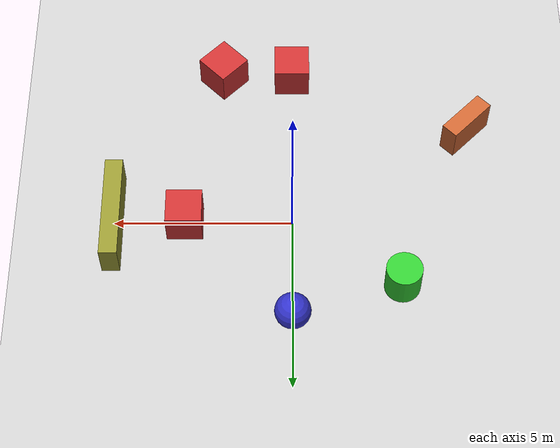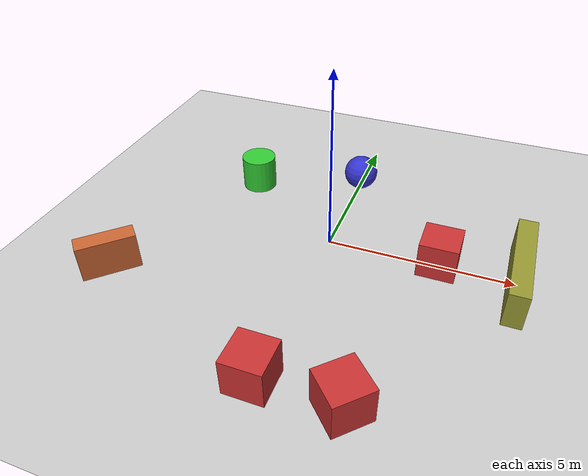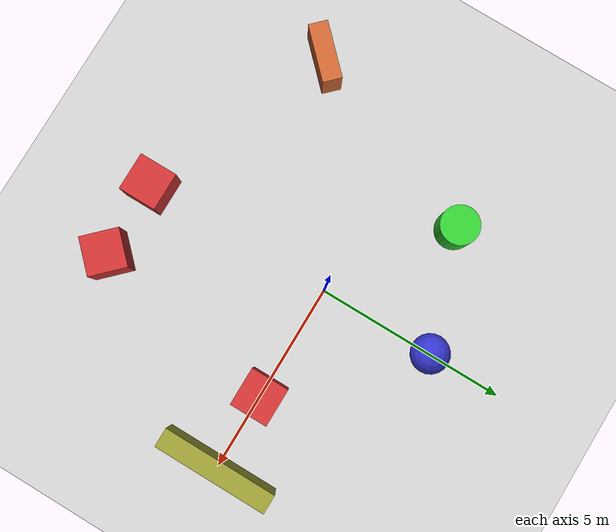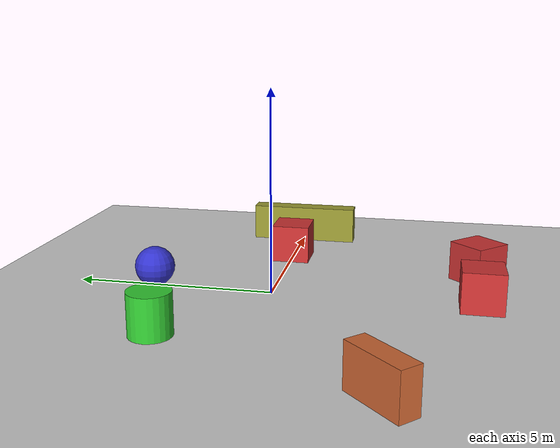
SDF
<?xml version="1.0"?>
<sdf version="1.8">
  <world name="leo_with_obstacles">
    <physics name="1ms" type="ignored">
      <max_step_size>0.001</max_step_size>
      <real_time_factor>1.0</real_time_factor>
    </physics>

    <plugin
      filename="gz-sim-physics-system"
      name="gz::sim::systems::Physics">
    </plugin>
    <plugin
      filename="gz-sim-sensors-system"
      name="gz::sim::systems::Sensors">
    </plugin>
    <plugin
      filename="gz-sim-scene-broadcaster-system"
      name="gz::sim::systems::SceneBroadcaster">
    </plugin>
    <plugin
      filename="gz-sim-user-commands-system"
      name="gz::sim::systems::UserCommands">
    </plugin>
    <plugin filename="gz-sim-imu-system"
      name="gz::sim::systems::Imu">
    </plugin>

    <light name="sun" type="directional">
      <cast_shadows>true</cast_shadows>
      <pose>0 0 10 0 0 0</pose>
      <diffuse>0.8 0.8 0.8 1</diffuse>
      <specular>0.2 0.2 0.2 1</specular>
      <attenuation>
        <range>1000</range>
        <constant>0.9</constant>
        <linear>0.01</linear>
        <quadratic>0.001</quadratic>
      </attenuation>
      <direction>-0.5 0.1 -0.9</direction>
    </light>

    <!-- 地面 -->
    <model name="ground_plane">
      <static>true</static>
      <link name="link">
        <collision name="collision">
          <geometry>
            <plane>
              <normal>0 0 1</normal>
              <size>100 100</size>
            </plane>
          </geometry>
          <surface>
            <friction>
              <ode>
                <mu>50</mu>
              </ode>
              <bullet>
                <friction>1</friction>
                <friction2>1</friction2>
                <rolling_friction>0.1</rolling_friction>
              </bullet>
            </friction>
          </surface>
        </collision>
        <visual name="visual">
          <geometry>
            <plane>
              <normal>0 0 1</normal>
              <size>100 100</size>
            </plane>
          </geometry>
          <material>
            <ambient>0.8 0.8 0.8 1</ambient>
            <diffuse>0.8 0.8 0.8 1</diffuse>
            <specular>0.8 0.8 0.8 1</specular>
          </material>
        </visual>
      </link>
    </model>

    <!-- 方法1: 直接在SDF中添加简单几何障碍物 -->

    <!-- 障碍物1: 立方体盒子 -->
    <model name="obstacle_box_1">
      <pose>3 0 0.5 0 0 0</pose>
      <static>true</static>
      <link name="link">
        <collision name="collision">
          <geometry>
            <box>
              <size>1 1 1</size>
            </box>
          </geometry>
        </collision>
        <visual name="visual">
          <geometry>
            <box>
              <size>1 1 1</size>
            </box>
          </geometry>
          <material>
            <ambient>0.8 0.2 0.2 1</ambient>
            <diffuse>0.8 0.2 0.2 1</diffuse>
            <specular>0.1 0.1 0.1 1</specular>
          </material>
        </visual>
      </link>
    </model>

    <!-- 障碍物2: 圆柱体 -->
    <model name="obstacle_cylinder_1">
      <pose>-3 2 0.5 0 0 0</pose>
      <static>true</static>
      <link name="link">
        <collision name="collision">
          <geometry>
            <cylinder>
              <radius>0.5</radius>
              <length>1</length>
            </cylinder>
          </geometry>
        </collision>
        <visual name="visual">
          <geometry>
            <cylinder>
              <radius>0.5</radius>
              <length>1</length>
            </cylinder>
          </geometry>
          <material>
            <ambient>0.2 0.8 0.2 1</ambient>
            <diffuse>0.2 0.8 0.2 1</diffuse>
            <specular>0.1 0.1 0.1 1</specular>
          </material>
        </visual>
      </link>
    </model>

    <!-- 障碍物3: 球体 -->
    <model name="obstacle_sphere_1">
      <pose>0 3 0.5 0 0 0</pose>
      <static>true</static>
      <link name="link">
        <collision name="collision">
          <geometry>
            <sphere>
              <radius>0.5</radius>
            </sphere>
          </geometry>
        </collision>
        <visual name="visual">
          <geometry>
            <sphere>
              <radius>0.5</radius>
            </sphere>
          </geometry>
          <material>
            <ambient>0.2 0.2 0.8 1</ambient>
            <diffuse>0.2 0.2 0.8 1</diffuse>
            <specular>0.1 0.1 0.1 1</specular>
          </material>
        </visual>
      </link>
    </model>

    <!-- 障碍物4: 多个盒子组成的墙 -->
    <model name="obstacle_wall_1">
      <pose>5 0 0.5 0 0 0</pose>
      <static>true</static>
      <link name="link">
        <collision name="collision">
          <geometry>
            <box>
              <size>0.5 3 1</size>
            </box>
          </geometry>
        </collision>
        <visual name="visual">
          <geometry>
            <box>
              <size>0.5 3 1</size>
            </box>
          </geometry>
          <material>
            <ambient>0.6 0.6 0.2 1</ambient>
            <diffuse>0.6 0.6 0.2 1</diffuse>
            <specular>0.1 0.1 0.1 1</specular>
          </material>
        </visual>
      </link>
    </model>

    <!-- 障碍物5: 倾斜的障碍物 -->
    <model name="obstacle_tilted_1">
      <pose>-5 -3 0.5 0 0 0.785</pose>
      <static>true</static>
      <link name="link">
        <collision name="collision">
          <geometry>
            <box>
              <size>1.5 0.5 1</size>
            </box>
          </geometry>
        </collision>
        <visual name="visual">
          <geometry>
            <box>
              <size>1.5 0.5 1</size>
            </box>
          </geometry>
          <material>
            <ambient>0.8 0.4 0.2 1</ambient>
            <diffuse>0.8 0.4 0.2 1</diffuse>
            <specular>0.1 0.1 0.1 1</specular>
          </material>
        </visual>
      </link>
    </model>

    <!-- 方法2: 使用include包含自定义模型 -->
    <!-- 示例：包含自定义障碍物模型 -->
    <model name="custom_obstacle_1">
      <include>
        <uri>model://simple_box_obstacle</uri>
        <pose>0 -5 0.5 0 0 0</pose>
      </include>
    </model>

    <model name="custom_obstacle_2">
      <include>
        <uri>model://simple_box_obstacle</uri>
        <pose>2 -5 0.5 0 0 0.785</pose>
      </include>
    </model>

  </world>
</sdf>

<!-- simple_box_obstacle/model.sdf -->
<sdf version="1.6">
  <model name="simple_box_obstacle">
    <static>true</static>
    <link name="link">
      <collision name="collision">
        <geometry>
          <box>
            <size>1 1 1</size>
          </box>
        </geometry>
      </collision>
      <visual name="visual">
        <geometry>
          <box>
            <size>1 1 1</size>
          </box>
        </geometry>
        <material>
          <ambient>0.8 0.2 0.2 1</ambient>
          <diffuse>0.8 0.2 0.2 1</diffuse>
          <specular>0.1 0.1 0.1 1</specular>
        </material>
      </visual>
    </link>
  </model>
</sdf>
